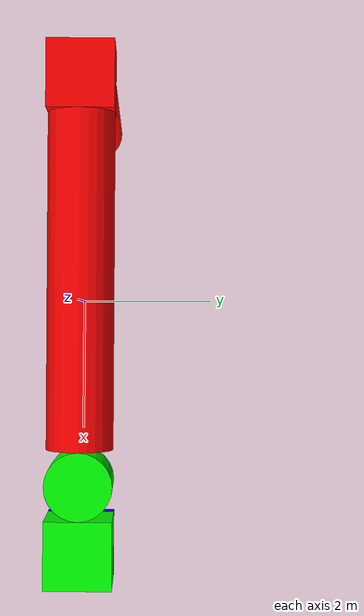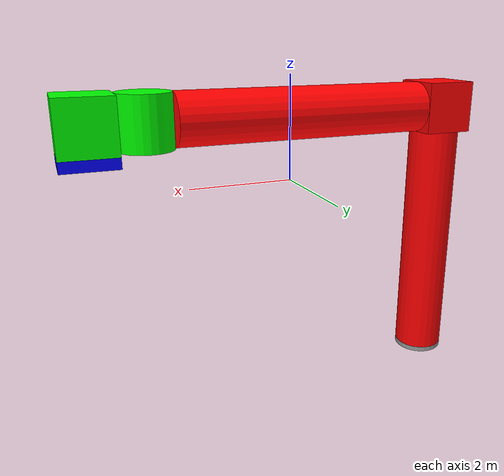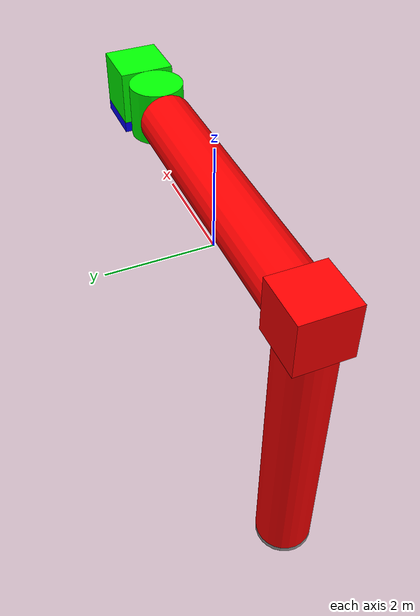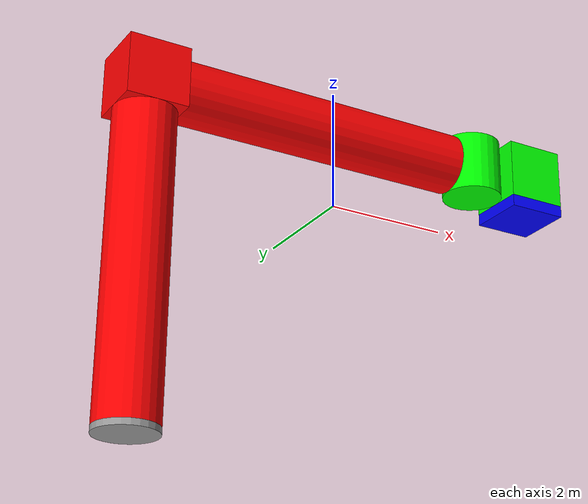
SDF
<?xml version='1.0'?>
<sdf version='1.6'>
  <model name='Untitled'>
    <model name='Better_Robot_Arm'>
      <link name='link_0'>
        <inertial>
          <mass>1</mass>
          <inertia>
            <ixx>0.145833</ixx>
            <ixy>0</ixy>
            <ixz>0</ixz>
            <iyy>0.145833</iyy>
            <iyz>0</iyz>
            <izz>0.125</izz>
          </inertia>
          <pose frame=''>0 0 0 0 -0 0</pose>
        </inertial>
        <pose frame=''>-3.28571 0 -4.16429 0 -0 0</pose>
        <gravity>1</gravity>
        <self_collide>0</self_collide>
        <kinematic>0</kinematic>
        <enable_wind>0</enable_wind>
        <visual name='visual'>
          <pose frame=''>0 0 0 0 -0 0</pose>
          <geometry>
            <cylinder>
              <radius>0.5</radius>
              <length>0.1</length>
            </cylinder>
          </geometry>
          <material>
            <lighting>1</lighting>
            <script>
              <uri>file://media/materials/scripts/gazebo.material</uri>
              <name>Gazebo/Grey</name>
            </script>
            <shader type='vertex'>
              <normal_map>__default__</normal_map>
            </shader>
            <ambient>0.3 0.3 0.3 1</ambient>
            <diffuse>0.7 0.7 0.7 1</diffuse>
            <specular>0.01 0.01 0.01 1</specular>
            <emissive>0 0 0 1</emissive>
          </material>
          <transparency>0</transparency>
          <cast_shadows>1</cast_shadows>
        </visual>
        <collision name='collision'>
          <laser_retro>0</laser_retro>
          <max_contacts>10</max_contacts>
          <pose frame=''>0 0 0 0 -0 0</pose>
          <geometry>
            <cylinder>
              <radius>0.5</radius>
              <length>0.1</length>
            </cylinder>
          </geometry>
          <surface>
            <friction>
              <ode>
                <mu>1</mu>
                <mu2>1</mu2>
                <fdir1>0 0 0</fdir1>
                <slip1>0</slip1>
                <slip2>0</slip2>
              </ode>
              <torsional>
                <coefficient>1</coefficient>
                <patch_radius>0</patch_radius>
                <surface_radius>0</surface_radius>
                <use_patch_radius>1</use_patch_radius>
                <ode>
                  <slip>0</slip>
                </ode>
              </torsional>
            </friction>
            <bounce>
              <restitution_coefficient>0</restitution_coefficient>
              <threshold>1e+06</threshold>
            </bounce>
            <contact>
              <collide_without_contact>0</collide_without_contact>
              <collide_without_contact_bitmask>1</collide_without_contact_bitmask>
              <collide_bitmask>1</collide_bitmask>
              <ode>
                <soft_cfm>0</soft_cfm>
                <soft_erp>0.2</soft_erp>
                <kp>1e+13</kp>
                <kd>1</kd>
                <max_vel>0.01</max_vel>
                <min_depth>0</min_depth>
              </ode>
              <bullet>
                <split_impulse>1</split_impulse>
                <split_impulse_penetration_threshold>-0.01</split_impulse_penetration_threshold>
                <soft_cfm>0</soft_cfm>
                <soft_erp>0.2</soft_erp>
                <kp>1e+13</kp>
                <kd>1</kd>
              </bullet>
            </contact>
          </surface>
        </collision>
      </link>
      <link name='link_1'>
        <inertial>
          <mass>1</mass>
          <inertia>
            <ixx>0.145833</ixx>
            <ixy>0</ixy>
            <ixz>0</ixz>
            <iyy>0.145833</iyy>
            <iyz>0</iyz>
            <izz>0.125</izz>
          </inertia>
          <pose frame=''>0 0 0 0 -0 0</pose>
        </inertial>
        <pose frame=''>-3.28571 0 -1.66429 0 -0 0</pose>
        <gravity>1</gravity>
        <self_collide>0</self_collide>
        <kinematic>0</kinematic>
        <enable_wind>0</enable_wind>
        <visual name='visual'>
          <pose frame=''>0 0 0 0 -0 0</pose>
          <geometry>
            <cylinder>
              <radius>0.5</radius>
              <length>4.9</length>
            </cylinder>
          </geometry>
          <material>
            <lighting>1</lighting>
            <script>
              <uri>file://media/materials/scripts/gazebo.material</uri>
              <name>Gazebo/Grey</name>
            </script>
            <shader type='vertex'>
              <normal_map>__default__</normal_map>
            </shader>
            <ambient>1 0 0 1</ambient>
            <diffuse>0.7 0.7 0.7 1</diffuse>
            <specular>0.01 0.01 0.01 1</specular>
            <emissive>0 0 0 1</emissive>
          </material>
          <transparency>0</transparency>
          <cast_shadows>1</cast_shadows>
        </visual>
        <collision name='collision'>
          <laser_retro>0</laser_retro>
          <max_contacts>10</max_contacts>
          <pose frame=''>0 0 0 0 -0 0</pose>
          <geometry>
            <cylinder>
              <radius>0.5</radius>
              <length>4.9</length>
            </cylinder>
          </geometry>
          <surface>
            <friction>
              <ode>
                <mu>1</mu>
                <mu2>1</mu2>
                <fdir1>0 0 0</fdir1>
                <slip1>0</slip1>
                <slip2>0</slip2>
              </ode>
              <torsional>
                <coefficient>1</coefficient>
                <patch_radius>0</patch_radius>
                <surface_radius>0</surface_radius>
                <use_patch_radius>1</use_patch_radius>
                <ode>
                  <slip>0</slip>
                </ode>
              </torsional>
            </friction>
            <bounce>
              <restitution_coefficient>0</restitution_coefficient>
              <threshold>1e+06</threshold>
            </bounce>
            <contact>
              <collide_without_contact>0</collide_without_contact>
              <collide_without_contact_bitmask>1</collide_without_contact_bitmask>
              <collide_bitmask>1</collide_bitmask>
              <ode>
                <soft_cfm>0</soft_cfm>
                <soft_erp>0.2</soft_erp>
                <kp>1e+13</kp>
                <kd>1</kd>
                <max_vel>0.01</max_vel>
                <min_depth>0</min_depth>
              </ode>
              <bullet>
                <split_impulse>1</split_impulse>
                <split_impulse_penetration_threshold>-0.01</split_impulse_penetration_threshold>
                <soft_cfm>0</soft_cfm>
                <soft_erp>0.2</soft_erp>
                <kp>1e+13</kp>
                <kd>1</kd>
              </bullet>
            </contact>
          </surface>
        </collision>
      </link>
      <link name='link_2'>
        <inertial>
          <mass>1</mass>
          <inertia>
            <ixx>0.166667</ixx>
            <ixy>0</ixy>
            <ixz>0</ixz>
            <iyy>0.166667</iyy>
            <iyz>0</iyz>
            <izz>0.166667</izz>
          </inertia>
          <pose frame=''>0 0 0 0 -0 0</pose>
        </inertial>
        <pose frame=''>-3.28571 0 1.28571 0 -0 0</pose>
        <gravity>1</gravity>
        <self_collide>0</self_collide>
        <kinematic>0</kinematic>
        <enable_wind>0</enable_wind>
        <visual name='visual'>
          <pose frame=''>0 0 0 0 -0 0</pose>
          <geometry>
            <box>
              <size>1 1 1</size>
            </box>
          </geometry>
          <material>
            <lighting>1</lighting>
            <script>
              <uri>file://media/materials/scripts/gazebo.material</uri>
              <name>Gazebo/Grey</name>
            </script>
            <shader type='vertex'>
              <normal_map>__default__</normal_map>
            </shader>
            <ambient>1 0 0 1</ambient>
            <diffuse>0.7 0.7 0.7 1</diffuse>
            <specular>0.01 0.01 0.01 1</specular>
            <emissive>0 0 0 1</emissive>
          </material>
          <transparency>0</transparency>
          <cast_shadows>1</cast_shadows>
        </visual>
        <collision name='collision'>
          <laser_retro>0</laser_retro>
          <max_contacts>10</max_contacts>
          <pose frame=''>0 0 0 0 -0 0</pose>
          <geometry>
            <box>
              <size>1 1 1</size>
            </box>
          </geometry>
          <surface>
            <friction>
              <ode>
                <mu>1</mu>
                <mu2>1</mu2>
                <fdir1>0 0 0</fdir1>
                <slip1>0</slip1>
                <slip2>0</slip2>
              </ode>
              <torsional>
                <coefficient>1</coefficient>
                <patch_radius>0</patch_radius>
                <surface_radius>0</surface_radius>
                <use_patch_radius>1</use_patch_radius>
                <ode>
                  <slip>0</slip>
                </ode>
              </torsional>
            </friction>
            <bounce>
              <restitution_coefficient>0</restitution_coefficient>
              <threshold>1e+06</threshold>
            </bounce>
            <contact>
              <collide_without_contact>0</collide_without_contact>
              <collide_without_contact_bitmask>1</collide_without_contact_bitmask>
              <collide_bitmask>1</collide_bitmask>
              <ode>
                <soft_cfm>0</soft_cfm>
                <soft_erp>0.2</soft_erp>
                <kp>1e+13</kp>
                <kd>1</kd>
                <max_vel>0.01</max_vel>
                <min_depth>0</min_depth>
              </ode>
              <bullet>
                <split_impulse>1</split_impulse>
                <split_impulse_penetration_threshold>-0.01</split_impulse_penetration_threshold>
                <soft_cfm>0</soft_cfm>
                <soft_erp>0.2</soft_erp>
                <kp>1e+13</kp>
                <kd>1</kd>
              </bullet>
            </contact>
          </surface>
        </collision>
      </link>
      <link name='link_3'>
        <inertial>
          <mass>1</mass>
          <inertia>
            <ixx>0.145833</ixx>
            <ixy>0</ixy>
            <ixz>0</ixz>
            <iyy>0.145833</iyy>
            <iyz>0</iyz>
            <izz>0.125</izz>
          </inertia>
          <pose frame=''>0 0 0 0 -0 0</pose>
        </inertial>
        <pose frame=''>-0.285714 0 1.28571 0 1.57 0</pose>
        <gravity>1</gravity>
        <self_collide>0</self_collide>
        <kinematic>0</kinematic>
        <enable_wind>0</enable_wind>
        <visual name='visual'>
          <pose frame=''>0 0 0 0 -0 0</pose>
          <geometry>
            <cylinder>
              <radius>0.5</radius>
              <length>5</length>
            </cylinder>
          </geometry>
          <material>
            <lighting>1</lighting>
            <script>
              <uri>file://media/materials/scripts/gazebo.material</uri>
              <name>Gazebo/Grey</name>
            </script>
            <shader type='vertex'>
              <normal_map>__default__</normal_map>
            </shader>
            <ambient>1 0 0 1</ambient>
            <diffuse>0.7 0.7 0.7 1</diffuse>
            <specular>0.01 0.01 0.01 1</specular>
            <emissive>0 0 0 1</emissive>
          </material>
          <transparency>0</transparency>
          <cast_shadows>1</cast_shadows>
        </visual>
        <collision name='collision'>
          <laser_retro>0</laser_retro>
          <max_contacts>10</max_contacts>
          <pose frame=''>0 0 0 0 -0 0</pose>
          <geometry>
            <cylinder>
              <radius>0.5</radius>
              <length>5</length>
            </cylinder>
          </geometry>
          <surface>
            <friction>
              <ode>
                <mu>1</mu>
                <mu2>1</mu2>
                <fdir1>0 0 0</fdir1>
                <slip1>0</slip1>
                <slip2>0</slip2>
              </ode>
              <torsional>
                <coefficient>1</coefficient>
                <patch_radius>0</patch_radius>
                <surface_radius>0</surface_radius>
                <use_patch_radius>1</use_patch_radius>
                <ode>
                  <slip>0</slip>
                </ode>
              </torsional>
            </friction>
            <bounce>
              <restitution_coefficient>0</restitution_coefficient>
              <threshold>1e+06</threshold>
            </bounce>
            <contact>
              <collide_without_contact>0</collide_without_contact>
              <collide_without_contact_bitmask>1</collide_without_contact_bitmask>
              <collide_bitmask>1</collide_bitmask>
              <ode>
                <soft_cfm>0</soft_cfm>
                <soft_erp>0.2</soft_erp>
                <kp>1e+13</kp>
                <kd>1</kd>
                <max_vel>0.01</max_vel>
                <min_depth>0</min_depth>
              </ode>
              <bullet>
                <split_impulse>1</split_impulse>
                <split_impulse_penetration_threshold>-0.01</split_impulse_penetration_threshold>
                <soft_cfm>0</soft_cfm>
                <soft_erp>0.2</soft_erp>
                <kp>1e+13</kp>
                <kd>1</kd>
              </bullet>
            </contact>
          </surface>
        </collision>
      </link>
      <link name='link_4'>
        <inertial>
          <mass>1</mass>
          <inertia>
            <ixx>0.145833</ixx>
            <ixy>0</ixy>
            <ixz>0</ixz>
            <iyy>0.145833</iyy>
            <iyz>0</iyz>
            <izz>0.125</izz>
          </inertia>
          <pose frame=''>0 0 0 0 -0 0</pose>
        </inertial>
        <pose frame=''>2.71429 0 1.28571 0 -0 0</pose>
        <gravity>1</gravity>
        <self_collide>0</self_collide>
        <kinematic>0</kinematic>
        <enable_wind>0</enable_wind>
        <visual name='visual'>
          <pose frame=''>0 0 0 0 -0 0</pose>
          <geometry>
            <cylinder>
              <radius>0.5</radius>
              <length>1</length>
            </cylinder>
          </geometry>
          <material>
            <lighting>1</lighting>
            <script>
              <uri>file://media/materials/scripts/gazebo.material</uri>
              <name>Gazebo/Grey</name>
            </script>
            <shader type='vertex'>
              <normal_map>__default__</normal_map>
            </shader>
            <ambient>0 1 0 1</ambient>
            <diffuse>0.7 0.7 0.7 1</diffuse>
            <specular>0.01 0.01 0.01 1</specular>
            <emissive>0 0 0 1</emissive>
          </material>
          <transparency>0</transparency>
          <cast_shadows>1</cast_shadows>
        </visual>
        <collision name='collision'>
          <laser_retro>0</laser_retro>
          <max_contacts>10</max_contacts>
          <pose frame=''>0 0 0 0 -0 0</pose>
          <geometry>
            <cylinder>
              <radius>0.5</radius>
              <length>1</length>
            </cylinder>
          </geometry>
          <surface>
            <friction>
              <ode>
                <mu>1</mu>
                <mu2>1</mu2>
                <fdir1>0 0 0</fdir1>
                <slip1>0</slip1>
                <slip2>0</slip2>
              </ode>
              <torsional>
                <coefficient>1</coefficient>
                <patch_radius>0</patch_radius>
                <surface_radius>0</surface_radius>
                <use_patch_radius>1</use_patch_radius>
                <ode>
                  <slip>0</slip>
                </ode>
              </torsional>
            </friction>
            <bounce>
              <restitution_coefficient>0</restitution_coefficient>
              <threshold>1e+06</threshold>
            </bounce>
            <contact>
              <collide_without_contact>0</collide_without_contact>
              <collide_without_contact_bitmask>1</collide_without_contact_bitmask>
              <collide_bitmask>1</collide_bitmask>
              <ode>
                <soft_cfm>0</soft_cfm>
                <soft_erp>0.2</soft_erp>
                <kp>1e+13</kp>
                <kd>1</kd>
                <max_vel>0.01</max_vel>
                <min_depth>0</min_depth>
              </ode>
              <bullet>
                <split_impulse>1</split_impulse>
                <split_impulse_penetration_threshold>-0.01</split_impulse_penetration_threshold>
                <soft_cfm>0</soft_cfm>
                <soft_erp>0.2</soft_erp>
                <kp>1e+13</kp>
                <kd>1</kd>
              </bullet>
            </contact>
          </surface>
        </collision>
      </link>
      <link name='link_5'>
        <inertial>
          <mass>1</mass>
          <inertia>
            <ixx>0.166667</ixx>
            <ixy>0</ixy>
            <ixz>0</ixz>
            <iyy>0.166667</iyy>
            <iyz>0</iyz>
            <izz>0.166667</izz>
          </inertia>
          <pose frame=''>0 0 0 0 -0 0</pose>
        </inertial>
        <pose frame=''>3.71429 0 1.28571 0 -0 0</pose>
        <gravity>1</gravity>
        <self_collide>0</self_collide>
        <kinematic>0</kinematic>
        <enable_wind>0</enable_wind>
        <visual name='visual'>
          <pose frame=''>0 0 0 0 -0 0</pose>
          <geometry>
            <box>
              <size>1 1 1</size>
            </box>
          </geometry>
          <material>
            <lighting>1</lighting>
            <script>
              <uri>file://media/materials/scripts/gazebo.material</uri>
              <name>Gazebo/Grey</name>
            </script>
            <shader type='vertex'>
              <normal_map>__default__</normal_map>
            </shader>
            <ambient>0 1 0 1</ambient>
            <diffuse>0.7 0.7 0.7 1</diffuse>
            <specular>0.01 0.01 0.01 1</specular>
            <emissive>0 0 0 1</emissive>
          </material>
          <transparency>0</transparency>
          <cast_shadows>1</cast_shadows>
        </visual>
        <collision name='collision'>
          <laser_retro>0</laser_retro>
          <max_contacts>10</max_contacts>
          <pose frame=''>0 0 0 0 -0 0</pose>
          <geometry>
            <box>
              <size>1 1 1</size>
            </box>
          </geometry>
          <surface>
            <friction>
              <ode>
                <mu>1</mu>
                <mu2>1</mu2>
                <fdir1>0 0 0</fdir1>
                <slip1>0</slip1>
                <slip2>0</slip2>
              </ode>
              <torsional>
                <coefficient>1</coefficient>
                <patch_radius>0</patch_radius>
                <surface_radius>0</surface_radius>
                <use_patch_radius>1</use_patch_radius>
                <ode>
                  <slip>0</slip>
                </ode>
              </torsional>
            </friction>
            <bounce>
              <restitution_coefficient>0</restitution_coefficient>
              <threshold>1e+06</threshold>
            </bounce>
            <contact>
              <collide_without_contact>0</collide_without_contact>
              <collide_without_contact_bitmask>1</collide_without_contact_bitmask>
              <collide_bitmask>1</collide_bitmask>
              <ode>
                <soft_cfm>0</soft_cfm>
                <soft_erp>0.2</soft_erp>
                <kp>1e+13</kp>
                <kd>1</kd>
                <max_vel>0.01</max_vel>
                <min_depth>0</min_depth>
              </ode>
              <bullet>
                <split_impulse>1</split_impulse>
                <split_impulse_penetration_threshold>-0.01</split_impulse_penetration_threshold>
                <soft_cfm>0</soft_cfm>
                <soft_erp>0.2</soft_erp>
                <kp>1e+13</kp>
                <kd>1</kd>
              </bullet>
            </contact>
          </surface>
        </collision>
      </link>
      <link name='link_6'>
        <inertial>
          <mass>1</mass>
          <inertia>
            <ixx>0.166667</ixx>
            <ixy>0</ixy>
            <ixz>0</ixz>
            <iyy>0.166667</iyy>
            <iyz>0</iyz>
            <izz>0.166667</izz>
          </inertia>
          <pose frame=''>0 0 0 0 -0 0</pose>
        </inertial>
        <pose frame=''>3.71429 0 0.685714 0 -0 0</pose>
        <gravity>1</gravity>
        <self_collide>0</self_collide>
        <kinematic>0</kinematic>
        <enable_wind>0</enable_wind>
        <visual name='visual'>
          <pose frame=''>0 0 0 0 -0 0</pose>
          <geometry>
            <box>
              <size>1 1 0.2</size>
            </box>
          </geometry>
          <material>
            <lighting>1</lighting>
            <script>
              <uri>file://media/materials/scripts/gazebo.material</uri>
              <name>Gazebo/Grey</name>
            </script>
            <shader type='vertex'>
              <normal_map>__default__</normal_map>
            </shader>
            <ambient>0 0 1 1</ambient>
            <diffuse>0.7 0.7 0.7 1</diffuse>
            <specular>0.01 0.01 0.01 1</specular>
            <emissive>0 0 0 1</emissive>
          </material>
          <transparency>0</transparency>
          <cast_shadows>1</cast_shadows>
        </visual>
        <collision name='collision'>
          <laser_retro>0</laser_retro>
          <max_contacts>10</max_contacts>
          <pose frame=''>0 0 0 0 -0 0</pose>
          <geometry>
            <box>
              <size>1 1 0.2</size>
            </box>
          </geometry>
          <surface>
            <friction>
              <ode>
                <mu>1</mu>
                <mu2>1</mu2>
                <fdir1>0 0 0</fdir1>
                <slip1>0</slip1>
                <slip2>0</slip2>
              </ode>
              <torsional>
                <coefficient>1</coefficient>
                <patch_radius>0</patch_radius>
                <surface_radius>0</surface_radius>
                <use_patch_radius>1</use_patch_radius>
                <ode>
                  <slip>0</slip>
                </ode>
              </torsional>
            </friction>
            <bounce>
              <restitution_coefficient>0</restitution_coefficient>
              <threshold>1e+06</threshold>
            </bounce>
            <contact>
              <collide_without_contact>0</collide_without_contact>
              <collide_without_contact_bitmask>1</collide_without_contact_bitmask>
              <collide_bitmask>1</collide_bitmask>
              <ode>
                <soft_cfm>0</soft_cfm>
                <soft_erp>0.2</soft_erp>
                <kp>1e+13</kp>
                <kd>1</kd>
                <max_vel>0.01</max_vel>
                <min_depth>0</min_depth>
              </ode>
              <bullet>
                <split_impulse>1</split_impulse>
                <split_impulse_penetration_threshold>-0.01</split_impulse_penetration_threshold>
                <soft_cfm>0</soft_cfm>
                <soft_erp>0.2</soft_erp>
                <kp>1e+13</kp>
                <kd>1</kd>
              </bullet>
            </contact>
          </surface>
        </collision>
      </link>
      <joint name='link_0_JOINT_0' type='revolute'>
        <parent>link_0</parent>
        <child>link_1</child>
        <pose frame=''>0 0 0 0 -0 0</pose>
        <axis>
          <xyz>0 0 1</xyz>
          <use_parent_model_frame>0</use_parent_model_frame>
          <limit>
            <lower>-1.79769e+308</lower>
            <upper>1.79769e+308</upper>
            <effort>-1</effort>
            <velocity>-1</velocity>
          </limit>
          <dynamics>
            <spring_reference>0</spring_reference>
            <spring_stiffness>0</spring_stiffness>
            <damping>0</damping>
          </dynamics>
        </axis>
        <physics>
          <ode>
            <limit>
              <cfm>0</cfm>
              <erp>0.2</erp>
            </limit>
            <suspension>
              <cfm>0</cfm>
              <erp>0.2</erp>
            </suspension>
          </ode>
        </physics>
      </joint>
      <joint name='link_1_JOINT_1' type='fixed'>
        <parent>link_1</parent>
        <child>link_2</child>
        <pose frame=''>0 0 0 0 -0 0</pose>
        <physics>
          <ode>
            <limit>
              <cfm>0</cfm>
              <erp>0.2</erp>
            </limit>
            <suspension>
              <cfm>0</cfm>
              <erp>0.2</erp>
            </suspension>
          </ode>
        </physics>
      </joint>
      <joint name='link_2_JOINT_2' type='fixed'>
        <parent>link_2</parent>
        <child>link_3</child>
        <pose frame=''>0 0 0 0 -0 0</pose>
        <physics>
          <ode>
            <limit>
              <cfm>0</cfm>
              <erp>0.2</erp>
            </limit>
            <suspension>
              <cfm>0</cfm>
              <erp>0.2</erp>
            </suspension>
          </ode>
        </physics>
      </joint>
      <joint name='link_3_JOINT_3' type='fixed'>
        <parent>link_3</parent>
        <child>link_4</child>
        <pose frame=''>0 0 0 0 -0 0</pose>
        <physics>
          <ode>
            <limit>
              <cfm>0</cfm>
              <erp>0.2</erp>
            </limit>
            <suspension>
              <cfm>0</cfm>
              <erp>0.2</erp>
            </suspension>
          </ode>
        </physics>
      </joint>
      <joint name='link_4_JOINT_4' type='revolute'>
        <parent>link_4</parent>
        <child>link_5</child>
        <pose frame=''>0 0 0 0 -0 0</pose>
        <axis>
          <xyz>0 0 1</xyz>
          <use_parent_model_frame>0</use_parent_model_frame>
          <limit>
            <lower>-1.79769e+308</lower>
            <upper>1.79769e+308</upper>
            <effort>-1</effort>
            <velocity>-1</velocity>
          </limit>
          <dynamics>
            <spring_reference>0</spring_reference>
            <spring_stiffness>0</spring_stiffness>
            <damping>0</damping>
          </dynamics>
        </axis>
        <physics>
          <ode>
            <limit>
              <cfm>0</cfm>
              <erp>0.2</erp>
            </limit>
            <suspension>
              <cfm>0</cfm>
              <erp>0.2</erp>
            </suspension>
          </ode>
        </physics>
      </joint>
      <joint name='link_5_JOINT_5' type='prismatic'>
        <parent>link_5</parent>
        <child>link_6</child>
        <pose frame=''>0 0 0 0 -0 0</pose>
        <axis>
          <xyz>1 0 0</xyz>
          <use_parent_model_frame>0</use_parent_model_frame>
          <limit>
            <lower>-1.79769e+308</lower>
            <upper>1.79769e+308</upper>
            <effort>-1</effort>
            <velocity>-1</velocity>
          </limit>
          <dynamics>
            <spring_reference>0</spring_reference>
            <spring_stiffness>0</spring_stiffness>
            <damping>0</damping>
            <friction>0</friction>
          </dynamics>
        </axis>
        <physics>
          <ode>
            <limit>
              <cfm>0</cfm>
              <erp>0.2</erp>
            </limit>
            <suspension>
              <cfm>0</cfm>
              <erp>0.2</erp>
            </suspension>
          </ode>
        </physics>
      </joint>
      <static>0</static>
      <allow_auto_disable>1</allow_auto_disable>
      <pose frame=''>-2e-06 -0 0 0 -0 0</pose>
    </model>
    <static>0</static>
    <allow_auto_disable>1</allow_auto_disable>
  </model>
</sdf>
